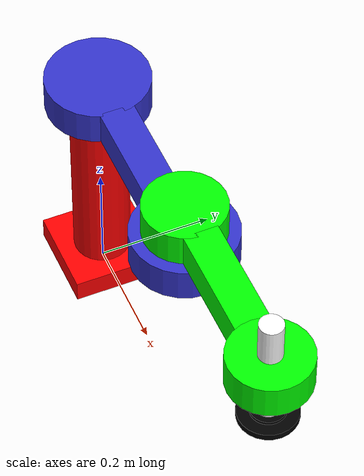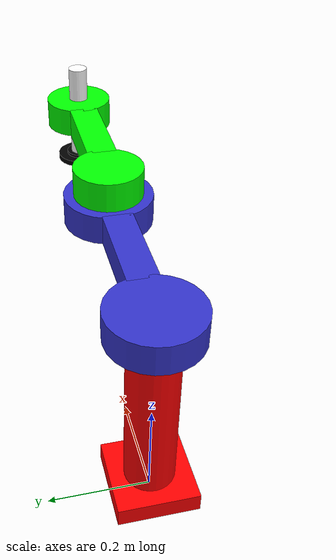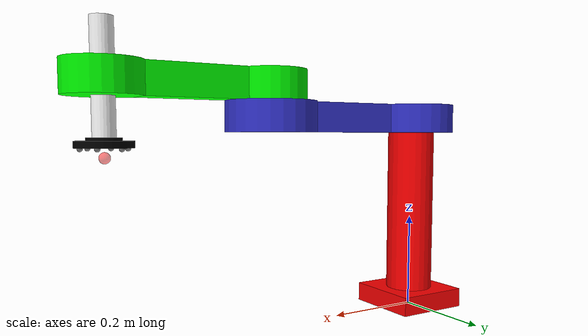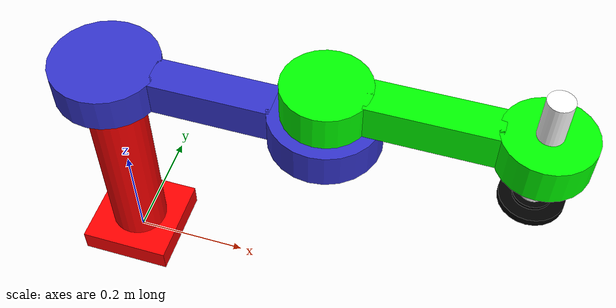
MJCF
<mujoco model="scara_fix_collision">
    <compiler angle="radian" coordinate="local" inertiafromgeom="true" />
    <option gravity="0 0 -9.81" timestep="0.004" />

    <worldbody>
        <body name="base" pos="0 0 0.02">
            <geom type="box" size="0.08 0.08 0.02" rgba="1 0 0 1" />

            <body name="base_cylinder" pos="0 0 0.2">
                <geom type="cylinder" size="0.05 0.2" rgba="1 0 0 1" />

                <body name="disc_start 1" pos="0 0 0.2">
                    <joint name="joint1" type="hinge" axis="0 0 1" range="-3.14 3.14" limited="true" damping="50" armature="0.1" />
                    <geom type="cylinder" size="0.09 0.03" rgba="0.2 0.2 0.8 1" />

                    <body name="link_arm 1" pos="0.18 0 0">
                        <geom type="box" size="0.1 0.03 0.03" rgba="0.2 0.2 0.8 1" />

                        <body name="disc_end 1" pos="0.18 0 0">
                            <geom type="cylinder" size="0.09 0.03" rgba="0.2 0.2 0.8 1" />

                            <body name="disc_start 2" pos="0 0 0.06">
                                <joint name="joint2" type="hinge" axis="0 0 1" range="-2.8 2.8" limited="true" damping="50" armature="0.1" />
                                <geom type="cylinder" size="0.07 0.03" rgba="0 1 0 1" />

                                    <body name="link_arm 2" pos="0.16 0 0">
                                        <geom type="box" size="0.1 0.03 0.03" rgba="0 1 0 1" />

                                            <body name="disc_end 2" pos="0.16 0 0">
                                                <geom type="cylinder" size="0.07 0.03" rgba="0 1 0 1" />

                                                     <body name="z_cylinder" pos="0 0 0">
                                                        <joint name="joint3" type="slide" axis="0 0 1" range="-0.06 0.06" limited="true" damping="50" armature="0.1" />
                                                        <geom type="cylinder" size="0.02 0.1" rgba="1 1 1 1" />

                                                            <body name="vaccum_base" pos="0 0 -0.105">
                                                                <geom type="cylinder" size='0.03 0.005'
                                                                    rgba='0 0 0 1' />

                                                                    <body name="vaccum_plate" pos="0 0 -0.0065">
                                                                        <geom margin="0.05" gap="0.05" type="cylinder" size="0.05 0.006" solref="0.002 1" solimp="0.95 0.99 0.001" rgba="0 0 0 1" />

                                                                        <site name="touch_sensor_point" group="2" type="sphere" rgba="1 0 0 0.5" pos="0 0 -0.023" size="0.01" />
                                                                        <body name="vacuum_point">
                                                                            <geom name="p1" type="sphere" pos="0.04 0 -0.007" size="0.005" margin="0.04" gap="0.03" friction="2.0 2 0.005"/>
                                                                            <geom name="p2" type="sphere" pos="0.02 0.0346 -0.007" size="0.005" margin="0.04" gap="0.03" friction="2.0 2 0.005"/>
                                                                            <geom name="p3" type="sphere" pos="-0.02 0.0346 -0.007" size="0.005" margin="0.04" gap="0.03" friction="2.0 2 0.005"/>
                                                                            <geom name="p4" type="sphere" pos="-0.04 0 -0.007" size="0.005" margin="0.04" gap="0.03" friction="2.0 2 0.005"/>
                                                                            <geom name="p5" type="sphere" pos="-0.02 -0.0346 -0.007" size="0.005" margin="0.04" gap="0.03" friction="2.0 2 0.005"/>
                                                                            <geom name="p6" type="sphere" pos="0.02 -0.0346 -0.007" size="0.005" margin="0.04" gap="0.03" friction="2.0 2 0.005"/>
                                                                        </body>
                                                                </body>
                                                            </body>
                                                        </body>

                                                    </body>

                                                </body>

                                            </body>
                                        </body>
                                    </body>
                                </body>
                            </body>
                        </body>

    </worldbody>

    <contact>
        <exclude body1="disc_end 2" body2="z_cylinder" />

    </contact>

    <actuator>
        <position name="joint1" joint="joint1" kp="500" />
        <position name="joint2" joint="joint2" kp="400" />
        <position name="joint3" joint="joint3" kp="1000" />
        <adhesion name="magnetic_gripper" body="vacuum_point" ctrlrange="0 100" gain="100"/>
    </actuator>
</mujoco>
